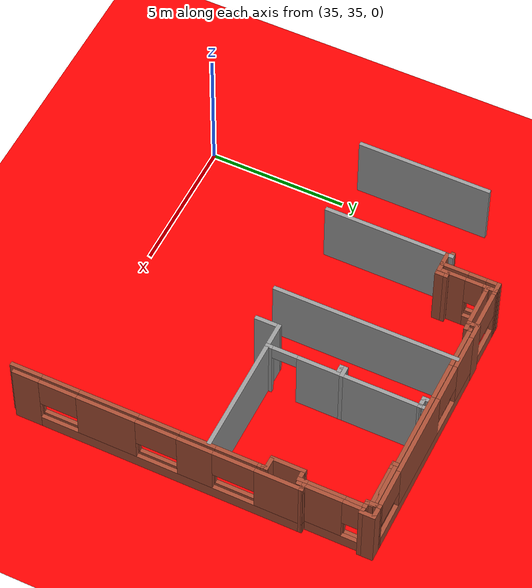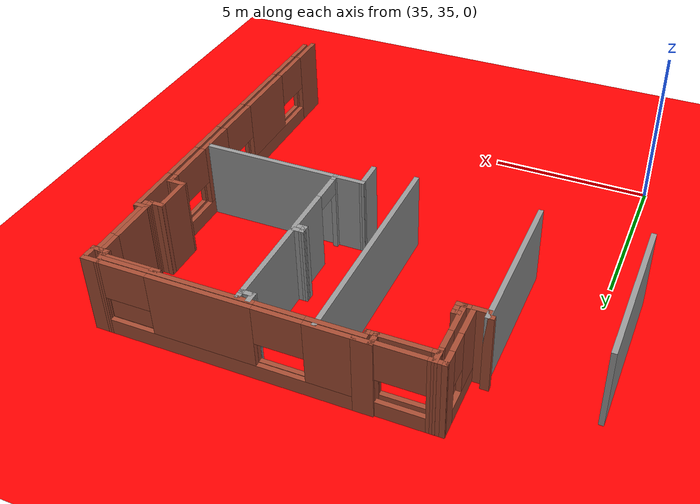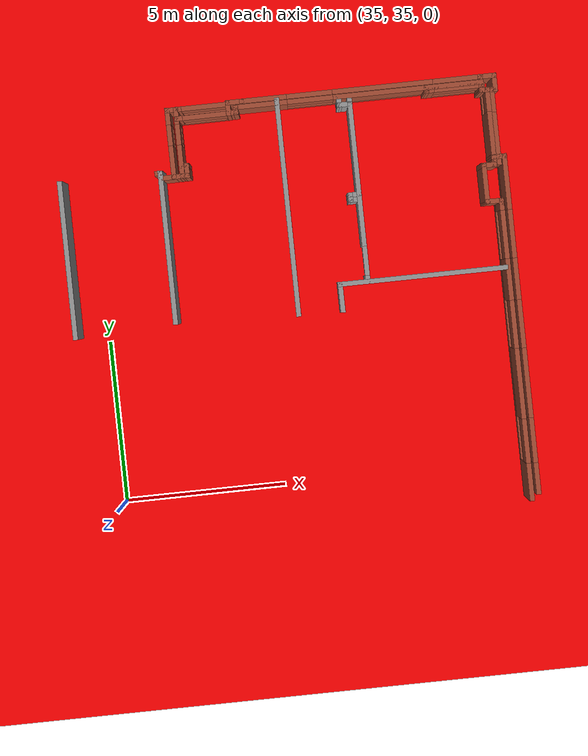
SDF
<sdf version="1.7">
 <world name="RaSpectLoc_ign">
  <model name="ground_plane">
   <static>1</static>
   <link name="link">
    <collision name="collision">
     <geometry><plane><normal>0 0 1</normal><size>100 100</size></plane></geometry>
     <surface><friction><ode><mu>100</mu><mu2>50</mu2></ode></friction></surface>
    </collision>
    <visual name="visual">
     <cast_shadows>0</cast_shadows>
     <geometry><plane><normal>0 0 1</normal><size>100 100</size></plane></geometry>
     <material><ambient>1 0 0 1</ambient><diffuse>1 0 0 1</diffuse><specular>0.1 0.1 0.1 1</specular></material>
    </visual>
   </link>
  </model>
  <model name="CVSSP">
   <pose>23.8714 24.094 0 0 -0 0</pose>
   <link name="Wall_246">
    <pose>23.6539 14.3878 0 0 -0 1.5708</pose>
    <visual name="Wall_246_Visual_0">
     <pose>-4.04048 0 1.25 0 -0 0</pose>
     <geometry><box><size>1.16905 0.15 2.5</size></box></geometry>
     <material>
      <script><uri>file://media/materials/scripts/gazebo.material</uri><name>Gazebo/Bricks</name></script>
      <ambient>1 1 1 1</ambient>
     </material>
    </visual>
    <collision name="Wall_246_Collision_0">
     <geometry><box><size>1.16905 0.15 2.5</size></box></geometry>
     <pose>-4.04048 0 1.25 0 -0 0</pose>
    </collision>
    <visual name="Wall_246_Visual_1">
     <pose>0.584524 0 0.25 0 -0 0</pose>
     <geometry><box><size>8.08095 0.15 0.5</size></box></geometry>
     <material>
      <script><uri>file://media/materials/scripts/gazebo.material</uri><name>Gazebo/Bricks</name></script>
      <ambient>1 1 1 1</ambient>
     </material>
    </visual>
    <collision name="Wall_246_Collision_1">
     <geometry><box><size>8.08095 0.15 0.5</size></box></geometry>
     <pose>0.584524 0 0.25 0 -0 0</pose>
    </collision>
    <visual name="Wall_246_Visual_2">
     <pose>-0.997265 0 1.5 0 -0 0</pose>
     <geometry><box><size>2.17318 0.15 2</size></box></geometry>
     <material>
      <script><uri>file://media/materials/scripts/gazebo.material</uri><name>Gazebo/Bricks</name></script>
      <ambient>1 1 1 1</ambient>
     </material>
    </visual>
    <collision name="Wall_246_Collision_2">
     <geometry><box><size>2.17318 0.15 2</size></box></geometry>
     <pose>-0.997265 0 1.5 0 -0 0</pose>
    </collision>
    <visual name="Wall_246_Visual_3">
     <pose>2.21429 0 1.5 0 -0 0</pose>
     <geometry><box><size>1.28036 0.15 2</size></box></geometry>
     <material>
      <script><uri>file://media/materials/scripts/gazebo.material</uri><name>Gazebo/Bricks</name></script>
      <ambient>1 1 1 1</ambient>
     </material>
    </visual>
    <collision name="Wall_246_Collision_3">
     <geometry><box><size>1.28036 0.15 2</size></box></geometry>
     <pose>2.21429 0 1.5 0 -0 0</pose>
    </collision>
    <visual name="Wall_246_Visual_4">
     <pose>4.48646 0 1.5 0 -0 0</pose>
     <geometry><box><size>0.27708 0.15 2</size></box></geometry>
     <material>
      <script><uri>file://media/materials/scripts/gazebo.material</uri><name>Gazebo/Bricks</name></script>
      <ambient>1 1 1 1</ambient>
     </material>
    </visual>
    <collision name="Wall_246_Collision_4">
     <geometry><box><size>0.27708 0.15 2</size></box></geometry>
     <pose>4.48646 0 1.5 0 -0 0</pose>
    </collision>
    <visual name="Wall_246_Visual_5">
     <pose>-2.7699 0 1.9 0 -0 0</pose>
     <geometry><box><size>1.3721 0.15 1.2</size></box></geometry>
     <material>
      <script><uri>file://media/materials/scripts/gazebo.material</uri><name>Gazebo/Bricks</name></script>
      <ambient>1 1 1 1</ambient>
     </material>
    </visual>
    <collision name="Wall_246_Collision_5">
     <geometry><box><size>1.3721 0.15 1.2</size></box></geometry>
     <pose>-2.7699 0 1.9 0 -0 0</pose>
    </collision>
    <visual name="Wall_246_Visual_6">
     <pose>0.831717 0 1.9 0 -0 0</pose>
     <geometry><box><size>1.48478 0.15 1.2</size></box></geometry>
     <material>
      <script><uri>file://media/materials/scripts/gazebo.material</uri><name>Gazebo/Bricks</name></script>
      <ambient>1 1 1 1</ambient>
     </material>
    </visual>
    <collision name="Wall_246_Collision_6">
     <geometry><box><size>1.48478 0.15 1.2</size></box></geometry>
     <pose>0.831717 0 1.9 0 -0 0</pose>
    </collision>
    <visual name="Wall_246_Visual_7">
     <pose>3.60119 0 1.9 0 -0 0</pose>
     <geometry><box><size>1.49345 0.15 1.2</size></box></geometry>
     <material>
      <script><uri>file://media/materials/scripts/gazebo.material</uri><name>Gazebo/Bricks</name></script>
      <ambient>1 1 1 1</ambient>
     </material>
    </visual>
    <collision name="Wall_246_Collision_7">
     <geometry><box><size>1.49345 0.15 1.2</size></box></geometry>
     <pose>3.60119 0 1.9 0 -0 0</pose>
    </collision>
   </link>
   <link name="Wall_248">
    <pose>23.8767 15.2054 0 0 -0 1.57026</pose>
    <visual name="Wall_248_Visual_0">
     <pose>-4.76522 0 1.25 0 -0 0</pose>
     <geometry><box><size>0.983202 0.15 2.5</size></box></geometry>
     <material>
      <script><uri>file://media/materials/scripts/gazebo.material</uri><name>Gazebo/Bricks</name></script>
      <ambient>1 1 1 1</ambient>
     </material>
    </visual>
    <collision name="Wall_248_Collision_0">
     <geometry><box><size>0.983202 0.15 2.5</size></box></geometry>
     <pose>-4.76522 0 1.25 0 -0 0</pose>
    </collision>
    <visual name="Wall_248_Visual_1">
     <pose>0.491601 0 0.25 0 -0 0</pose>
     <geometry><box><size>9.53043 0.15 0.5</size></box></geometry>
     <material>
      <script><uri>file://media/materials/scripts/gazebo.material</uri><name>Gazebo/Bricks</name></script>
      <ambient>1 1 1 1</ambient>
     </material>
    </visual>
    <collision name="Wall_248_Collision_1">
     <geometry><box><size>9.53043 0.15 0.5</size></box></geometry>
     <pose>0.491601 0 0.25 0 -0 0</pose>
    </collision>
    <visual name="Wall_248_Visual_2">
     <pose>-1.81497 0 1.5 0 -0 0</pose>
     <geometry><box><size>2.15587 0.15 2</size></box></geometry>
     <material>
      <script><uri>file://media/materials/scripts/gazebo.material</uri><name>Gazebo/Bricks</name></script>
      <ambient>1 1 1 1</ambient>
     </material>
    </visual>
    <collision name="Wall_248_Collision_2">
     <geometry><box><size>2.15587 0.15 2</size></box></geometry>
     <pose>-1.81497 0 1.5 0 -0 0</pose>
    </collision>
    <visual name="Wall_248_Visual_3">
     <pose>1.3966 0 1.5 0 -0 0</pose>
     <geometry><box><size>1.28045 0.15 2</size></box></geometry>
     <material>
      <script><uri>file://media/materials/scripts/gazebo.material</uri><name>Gazebo/Bricks</name></script>
      <ambient>1 1 1 1</ambient>
     </material>
    </visual>
    <collision name="Wall_248_Collision_3">
     <geometry><box><size>1.28045 0.15 2</size></box></geometry>
     <pose>1.3966 0 1.5 0 -0 0</pose>
    </collision>
    <visual name="Wall_248_Visual_4">
     <pose>4.39355 0 1.5 0 -0 0</pose>
     <geometry><box><size>1.72654 0.15 2</size></box></geometry>
     <material>
      <script><uri>file://media/materials/scripts/gazebo.material</uri><name>Gazebo/Bricks</name></script>
      <ambient>1 1 1 1</ambient>
     </material>
    </visual>
    <collision name="Wall_248_Collision_4">
     <geometry><box><size>1.72654 0.15 2</size></box></geometry>
     <pose>4.39355 0 1.5 0 -0 0</pose>
    </collision>
    <visual name="Wall_248_Visual_5">
     <pose>-3.58326 0 1.9 0 -0 0</pose>
     <geometry><box><size>1.38071 0.15 1.2</size></box></geometry>
     <material>
      <script><uri>file://media/materials/scripts/gazebo.material</uri><name>Gazebo/Bricks</name></script>
      <ambient>1 1 1 1</ambient>
     </material>
    </visual>
    <collision name="Wall_248_Collision_5">
     <geometry><box><size>1.38071 0.15 1.2</size></box></geometry>
     <pose>-3.58326 0 1.9 0 -0 0</pose>
    </collision>
    <visual name="Wall_248_Visual_6">
     <pose>0.009668 0 1.9 0 -0 0</pose>
     <geometry><box><size>1.49341 0.15 1.2</size></box></geometry>
     <material>
      <script><uri>file://media/materials/scripts/gazebo.material</uri><name>Gazebo/Bricks</name></script>
      <ambient>1 1 1 1</ambient>
     </material>
    </visual>
    <collision name="Wall_248_Collision_6">
     <geometry><box><size>1.49341 0.15 1.2</size></box></geometry>
     <pose>0.009668 0 1.9 0 -0 0</pose>
    </collision>
    <visual name="Wall_248_Visual_7">
     <pose>2.78355 0 1.9 0 -0 0</pose>
     <geometry><box><size>1.49345 0.15 1.2</size></box></geometry>
     <material>
      <script><uri>file://media/materials/scripts/gazebo.material</uri><name>Gazebo/Bricks</name></script>
      <ambient>1 1 1 1</ambient>
     </material>
    </visual>
    <collision name="Wall_248_Collision_7">
     <geometry><box><size>1.49345 0.15 1.2</size></box></geometry>
     <pose>2.78355 0 1.9 0 -0 0</pose>
    </collision>
   </link>
   <link name="Wall_249">
    <collision name="Wall_249_Collision">
     <geometry><box><size>0.472183 0.15 2.5</size></box></geometry>
     <pose>0 0 1.25 0 -0 0</pose>
    </collision>
    <visual name="Wall_249_Visual">
     <pose>0 0 1.25 0 -0 0</pose>
     <geometry><box><size>0.472183 0.15 2.5</size></box></geometry>
     <material>
      <script><uri>file://media/materials/scripts/gazebo.material</uri><name>Gazebo/Bricks</name></script>
      <ambient>1 1 1 1</ambient>
     </material>
    </visual>
    <pose>23.7184 20.3872 0 0 -0 3.14159</pose>
   </link>
   <link name="Wall_251">
    <collision name="Wall_251_Collision">
     <geometry><box><size>0.25 0.15 2.5</size></box></geometry>
     <pose>0 0 1.25 0 -0 0</pose>
    </collision>
    <visual name="Wall_251_Visual">
     <pose>0 0 1.25 0 -0 0</pose>
     <geometry><box><size>0.25 0.15 2.5</size></box></geometry>
     <material>
      <script><uri>file://media/materials/scripts/gazebo.material</uri><name>Gazebo/Bricks</name></script>
      <ambient>1 1 1 1</ambient>
     </material>
    </visual>
    <pose>23.6539 18.9878 0 0 -0 1.5708</pose>
   </link>
   <link name="Wall_252">
    <collision name="Wall_252_Collision">
     <geometry><box><size>0.578729 0.15 2.5</size></box></geometry>
     <pose>0 0 1.25 0 -0 0</pose>
    </collision>
    <visual name="Wall_252_Visual">
     <pose>0 0 1.25 0 -0 0</pose>
     <geometry><box><size>0.578729 0.15 2.5</size></box></geometry>
     <material>
      <script><uri>file://media/materials/scripts/gazebo.material</uri><name>Gazebo/Bricks</name></script>
      <ambient>1 1 1 1</ambient>
     </material>
    </visual>
    <pose>23.4395 19.0409 0 0 -0 3.12698</pose>
   </link>
   <link name="Wall_253">
    <collision name="Wall_253_Collision">
     <geometry><box><size>1.26972 0.15 2.5</size></box></geometry>
     <pose>0 0 1.25 0 -0 0</pose>
    </collision>
    <visual name="Wall_253_Visual">
     <pose>0 0 1.25 0 -0 0</pose>
     <geometry><box><size>1.26972 0.15 2.5</size></box></geometry>
     <material>
      <script><uri>file://media/materials/scripts/gazebo.material</uri><name>Gazebo/Bricks</name></script>
      <ambient>1 1 1 1</ambient>
     </material>
    </visual>
    <pose>23.2252 19.6039 0 0 -0 1.5708</pose>
   </link>
   <link name="Wall_254">
    <collision name="Wall_254_Collision">
     <geometry><box><size>0.488706 0.15 2.5</size></box></geometry>
     <pose>0 0 1.25 0 -0 0</pose>
    </collision>
    <visual name="Wall_254_Visual">
     <pose>0 0 1.25 0 -0 0</pose>
     <geometry><box><size>0.488706 0.15 2.5</size></box></geometry>
     <material>
      <script><uri>file://media/materials/scripts/gazebo.material</uri><name>Gazebo/Bricks</name></script>
      <ambient>1 1 1 1</ambient>
     </material>
    </visual>
    <pose>23.3945 20.1571 0 0 0 -0.000206</pose>
   </link>
   <link name="Wall_256">
    <collision name="Wall_256_Collision">
     <geometry><box><size>0.373652 0.15 2.5</size></box></geometry>
     <pose>0 0 1.25 0 -0 0</pose>
    </collision>
    <visual name="Wall_256_Visual">
     <pose>0 0 1.25 0 -0 0</pose>
     <geometry><box><size>0.373652 0.15 2.5</size></box></geometry>
     <material>
      <script><uri>file://media/materials/scripts/gazebo.material</uri><name>Gazebo/Bricks</name></script>
      <ambient>1 1 1 1</ambient>
     </material>
    </visual>
    <pose>23.5606 20.2755 0 0 -0 1.6002</pose>
   </link>
   <link name="Wall_260">
    <pose>23.5639 21.3143 0 0 -0 1.5708</pose>
    <visual name="Wall_260_Visual_0">
     <pose>-0.373491 0 1.25 0 -0 0</pose>
     <geometry><box><size>1.70433 0.15 2.5</size></box></geometry>
     <material>
      <script><uri>file://media/materials/scripts/gazebo.material</uri><name>Gazebo/Bricks</name></script>
      <ambient>1 1 1 1</ambient>
     </material>
    </visual>
    <collision name="Wall_260_Collision_0">
     <geometry><box><size>1.70433 0.15 2.5</size></box></geometry>
     <pose>-0.373491 0 1.25 0 -0 0</pose>
    </collision>
    <visual name="Wall_260_Visual_1">
     <pose>0.852167 0 0.25 0 -0 0</pose>
     <geometry><box><size>0.746982 0.15 0.5</size></box></geometry>
     <material>
      <script><uri>file://media/materials/scripts/gazebo.material</uri><name>Gazebo/Bricks</name></script>
      <ambient>1 1 1 1</ambient>
     </material>
    </visual>
    <collision name="Wall_260_Collision_1">
     <geometry><box><size>0.746982 0.15 0.5</size></box></geometry>
     <pose>0.852167 0 0.25 0 -0 0</pose>
    </collision>
    <visual name="Wall_260_Visual_2">
     <pose>1.14815 0 1.5 0 -0 0</pose>
     <geometry><box><size>0.155018 0.15 2</size></box></geometry>
     <material>
      <script><uri>file://media/materials/scripts/gazebo.material</uri><name>Gazebo/Bricks</name></script>
      <ambient>1 1 1 1</ambient>
     </material>
    </visual>
    <collision name="Wall_260_Collision_2">
     <geometry><box><size>0.155018 0.15 2</size></box></geometry>
     <pose>1.14815 0 1.5 0 -0 0</pose>
    </collision>
    <visual name="Wall_260_Visual_3">
     <pose>0.774658 0 1.9 0 -0 0</pose>
     <geometry><box><size>0.591964 0.15 1.2</size></box></geometry>
     <material>
      <script><uri>file://media/materials/scripts/gazebo.material</uri><name>Gazebo/Bricks</name></script>
      <ambient>1 1 1 1</ambient>
     </material>
    </visual>
    <collision name="Wall_260_Collision_3">
     <geometry><box><size>0.591964 0.15 1.2</size></box></geometry>
     <pose>0.774658 0 1.9 0 -0 0</pose>
    </collision>
   </link>
   <link name="Wall_261">
    <collision name="Wall_261_Collision">
     <geometry><box><size>0.320954 0.15 2.5</size></box></geometry>
     <pose>0 0 1.25 0 -0 0</pose>
    </collision>
    <visual name="Wall_261_Visual">
     <pose>0 0 1.25 0 -0 0</pose>
     <geometry><box><size>0.320954 0.15 2.5</size></box></geometry>
     <material>
      <script><uri>file://media/materials/scripts/gazebo.material</uri><name>Gazebo/Bricks</name></script>
      <ambient>1 1 1 1</ambient>
     </material>
    </visual>
    <pose>23.4784 22.465 0 0 -0 3.14159</pose>
   </link>
   <link name="Wall_262">
    <collision name="Wall_262_Collision">
     <geometry><box><size>0.564287 0.15 2.5</size></box></geometry>
     <pose>0 0 1.25 0 -0 0</pose>
    </collision>
    <visual name="Wall_262_Visual">
     <pose>0 0 1.25 0 -0 0</pose>
     <geometry><box><size>0.564287 0.15 2.5</size></box></geometry>
     <material>
      <script><uri>file://media/materials/scripts/gazebo.material</uri><name>Gazebo/Bricks</name></script>
      <ambient>1 1 1 1</ambient>
     </material>
    </visual>
    <pose>23.3897 22.6721 0 0 -0 1.58667</pose>
   </link>
   <link name="Wall_263">
    <collision name="Wall_263_Collision">
     <geometry><box><size>0.577386 0.15 2.5</size></box></geometry>
     <pose>0 0 1.25 0 -0 0</pose>
    </collision>
    <visual name="Wall_263_Visual">
     <pose>0 0 1.25 0 -0 0</pose>
     <geometry><box><size>0.577386 0.15 2.5</size></box></geometry>
     <material>
      <script><uri>file://media/materials/scripts/gazebo.material</uri><name>Gazebo/Bricks</name></script>
      <ambient>1 1 1 1</ambient>
     </material>
    </visual>
    <pose>23.6001 22.8792 0 0 -0 0</pose>
   </link>
   <link name="Wall_264">
    <collision name="Wall_264_Collision">
     <geometry><box><size>0.577386 0.15 2.5</size></box></geometry>
     <pose>0 0 1.25 0 -0 0</pose>
    </collision>
    <visual name="Wall_264_Visual">
     <pose>0 0 1.25 0 -0 0</pose>
     <geometry><box><size>0.577386 0.15 2.5</size></box></geometry>
     <material>
      <script><uri>file://media/materials/scripts/gazebo.material</uri><name>Gazebo/Bricks</name></script>
      <ambient>1 1 1 1</ambient>
     </material>
    </visual>
    <pose>23.8138 22.6655 0 0 0 -1.5708</pose>
   </link>
   <link name="Wall_265">
    <collision name="Wall_265_Collision">
     <geometry><box><size>0.262549 0.15 2.5</size></box></geometry>
     <pose>0 0 1.25 0 -0 0</pose>
    </collision>
    <visual name="Wall_265_Visual">
     <pose>0 0 1.25 0 -0 0</pose>
     <geometry><box><size>0.262549 0.15 2.5</size></box></geometry>
     <material>
      <script><uri>file://media/materials/scripts/gazebo.material</uri><name>Gazebo/Bricks</name></script>
      <ambient>1 1 1 1</ambient>
     </material>
    </visual>
    <pose>23.7579 22.4518 0 0 -0 3.14159</pose>
   </link>
   <link name="Wall_266">
    <pose>23.702 21.3275 0 0 0 -1.5708</pose>
    <visual name="Wall_266_Visual_0">
     <pose>-1.13276 0 1.25 0 -0 0</pose>
     <geometry><box><size>0.133194 0.15 2.5</size></box></geometry>
     <material>
      <script><uri>file://media/materials/scripts/gazebo.material</uri><name>Gazebo/Bricks</name></script>
      <ambient>1 1 1 1</ambient>
     </material>
    </visual>
    <collision name="Wall_266_Collision_0">
     <geometry><box><size>0.133194 0.15 2.5</size></box></geometry>
     <pose>-1.13276 0 1.25 0 -0 0</pose>
    </collision>
    <visual name="Wall_266_Visual_1">
     <pose>0.066597 0 0.25 0 -0 0</pose>
     <geometry><box><size>2.26551 0.15 0.5</size></box></geometry>
     <material>
      <script><uri>file://media/materials/scripts/gazebo.material</uri><name>Gazebo/Bricks</name></script>
      <ambient>1 1 1 1</ambient>
     </material>
    </visual>
    <collision name="Wall_266_Collision_1">
     <geometry><box><size>2.26551 0.15 0.5</size></box></geometry>
     <pose>0.066597 0 0.25 0 -0 0</pose>
    </collision>
    <visual name="Wall_266_Visual_2">
     <pose>0.384249 0 1.5 0 -0 0</pose>
     <geometry><box><size>1.63021 0.15 2</size></box></geometry>
     <material>
      <script><uri>file://media/materials/scripts/gazebo.material</uri><name>Gazebo/Bricks</name></script>
      <ambient>1 1 1 1</ambient>
     </material>
    </visual>
    <collision name="Wall_266_Collision_2">
     <geometry><box><size>1.63021 0.15 2</size></box></geometry>
     <pose>0.384249 0 1.5 0 -0 0</pose>
    </collision>
    <visual name="Wall_266_Visual_3">
     <pose>-0.748507 0 1.9 0 -0 0</pose>
     <geometry><box><size>0.635305 0.15 1.2</size></box></geometry>
     <material>
      <script><uri>file://media/materials/scripts/gazebo.material</uri><name>Gazebo/Bricks</name></script>
      <ambient>1 1 1 1</ambient>
     </material>
    </visual>
    <collision name="Wall_266_Collision_3">
     <geometry><box><size>0.635305 0.15 1.2</size></box></geometry>
     <pose>-0.748507 0 1.9 0 -0 0</pose>
    </collision>
   </link>
   <link name="Wall_268">
    <pose>19.7114 22.8792 0 0 -0 3.14159</pose>
    <visual name="Wall_268_Visual_0">
     <pose>-3.69493 0 1.25 0 -0 0</pose>
     <geometry><box><size>0.110141 0.15 2.5</size></box></geometry>
     <material>
      <script><uri>file://media/materials/scripts/gazebo.material</uri><name>Gazebo/Bricks</name></script>
      <ambient>1 1 1 1</ambient>
     </material>
    </visual>
    <collision name="Wall_268_Collision_0">
     <geometry><box><size>0.110141 0.15 2.5</size></box></geometry>
     <pose>-3.69493 0 1.25 0 -0 0</pose>
    </collision>
    <visual name="Wall_268_Visual_1">
     <pose>0.05507 0 0.25 0 -0 0</pose>
     <geometry><box><size>7.38986 0.15 0.5</size></box></geometry>
     <material>
      <script><uri>file://media/materials/scripts/gazebo.material</uri><name>Gazebo/Bricks</name></script>
      <ambient>1 1 1 1</ambient>
     </material>
    </visual>
    <collision name="Wall_268_Collision_1">
     <geometry><box><size>7.38986 0.15 0.5</size></box></geometry>
     <pose>0.05507 0 0.25 0 -0 0</pose>
    </collision>
    <visual name="Wall_268_Visual_2">
     <pose>-0.658919 0 1.5 0 -0 0</pose>
     <geometry><box><size>3.09633 0.15 2</size></box></geometry>
     <material>
      <script><uri>file://media/materials/scripts/gazebo.material</uri><name>Gazebo/Bricks</name></script>
      <ambient>1 1 1 1</ambient>
     </material>
    </visual>
    <collision name="Wall_268_Collision_2">
     <geometry><box><size>3.09633 0.15 2</size></box></geometry>
     <pose>-0.658919 0 1.5 0 -0 0</pose>
    </collision>
    <visual name="Wall_268_Visual_3">
     <pose>3.02537 0 1.5 0 -0 0</pose>
     <geometry><box><size>1.44926 0.15 2</size></box></geometry>
     <material>
      <script><uri>file://media/materials/scripts/gazebo.material</uri><name>Gazebo/Bricks</name></script>
      <ambient>1 1 1 1</ambient>
     </material>
    </visual>
    <collision name="Wall_268_Collision_3">
     <geometry><box><size>1.44926 0.15 2</size></box></geometry>
     <pose>3.02537 0 1.5 0 -0 0</pose>
    </collision>
    <visual name="Wall_268_Visual_4">
     <pose>-2.92347 0 1.9 0 -0 0</pose>
     <geometry><box><size>1.43278 0.15 1.2</size></box></geometry>
     <material>
      <script><uri>file://media/materials/scripts/gazebo.material</uri><name>Gazebo/Bricks</name></script>
      <ambient>1 1 1 1</ambient>
     </material>
    </visual>
    <collision name="Wall_268_Collision_4">
     <geometry><box><size>1.43278 0.15 1.2</size></box></geometry>
     <pose>-2.92347 0 1.9 0 -0 0</pose>
    </collision>
    <visual name="Wall_268_Visual_5">
     <pose>1.59499 0 1.9 0 -0 0</pose>
     <geometry><box><size>1.41149 0.15 1.2</size></box></geometry>
     <material>
      <script><uri>file://media/materials/scripts/gazebo.material</uri><name>Gazebo/Bricks</name></script>
      <ambient>1 1 1 1</ambient>
     </material>
    </visual>
    <collision name="Wall_268_Collision_5">
     <geometry><box><size>1.41149 0.15 1.2</size></box></geometry>
     <pose>1.59499 0 1.9 0 -0 0</pose>
    </collision>
   </link>
   <link name="Wall_269">
    <collision name="Wall_269_Collision">
     <geometry><box><size>0.587162 0.15 2.5</size></box></geometry>
     <pose>0 0 1.25 0 -0 0</pose>
    </collision>
    <visual name="Wall_269_Visual">
     <pose>0 0 1.25 0 -0 0</pose>
     <geometry><box><size>0.587162 0.15 2.5</size></box></geometry>
     <material>
      <script><uri>file://media/materials/scripts/gazebo.material</uri><name>Gazebo/Bricks</name></script>
      <ambient>1 1 1 1</ambient>
     </material>
    </visual>
    <pose>15.8178 22.8792 0 0 0 -3.14142</pose>
   </link>
   <link name="Wall_270">
    <collision name="Wall_270_Collision">
     <geometry><box><size>0.465577 0.15 2.5</size></box></geometry>
     <pose>0 0 1.25 0 -0 0</pose>
    </collision>
    <visual name="Wall_270_Visual">
     <pose>0 0 1.25 0 -0 0</pose>
     <geometry><box><size>0.465577 0.15 2.5</size></box></geometry>
     <material>
      <script><uri>file://media/materials/scripts/gazebo.material</uri><name>Gazebo/Bricks</name></script>
      <ambient>1 1 1 1</ambient>
     </material>
    </visual>
    <pose>15.5965 22.7138 0 0 0 -1.58788</pose>
   </link>
   <link name="Wall_271">
    <collision name="Wall_271_Collision">
     <geometry><box><size>0.381117 0.15 2.5</size></box></geometry>
     <pose>0 0 1.25 0 -0 0</pose>
    </collision>
    <visual name="Wall_271_Visual">
     <pose>0 0 1.25 0 -0 0</pose>
     <geometry><box><size>0.381117 0.15 2.5</size></box></geometry>
     <material>
      <script><uri>file://media/materials/scripts/gazebo.material</uri><name>Gazebo/Bricks</name></script>
      <ambient>1 1 1 1</ambient>
     </material>
    </visual>
    <pose>15.7094 22.5636 0 0 -0 0</pose>
   </link>
   <link name="Wall_272">
    <collision name="Wall_272_Collision">
     <geometry><box><size>0.294654 0.15 2.5</size></box></geometry>
     <pose>0 0 1.25 0 -0 0</pose>
    </collision>
    <visual name="Wall_272_Visual">
     <pose>0 0 1.25 0 -0 0</pose>
     <geometry><box><size>0.294654 0.15 2.5</size></box></geometry>
     <material>
      <script><uri>file://media/materials/scripts/gazebo.material</uri><name>Gazebo/Bricks</name></script>
      <ambient>1 1 1 1</ambient>
     </material>
    </visual>
    <pose>15.8249 22.6359 0 0 -0 1.5708</pose>
   </link>
   <link name="Wall_273">
    <pose>19.6122 22.7148 0 0 -0 0</pose>
    <visual name="Wall_273_Visual_0">
     <pose>-3.02728 0 1.25 0 -0 0</pose>
     <geometry><box><size>1.67003 0.15 2.5</size></box></geometry>
     <material>
      <script><uri>file://media/materials/scripts/gazebo.material</uri><name>Gazebo/Bricks</name></script>
      <ambient>1 1 1 1</ambient>
     </material>
    </visual>
    <collision name="Wall_273_Collision_0">
     <geometry><box><size>1.67003 0.15 2.5</size></box></geometry>
     <pose>-3.02728 0 1.25 0 -0 0</pose>
    </collision>
    <visual name="Wall_273_Visual_1">
     <pose>0.835017 0 0.25 0 -0 0</pose>
     <geometry><box><size>6.05455 0.15 0.5</size></box></geometry>
     <material>
      <script><uri>file://media/materials/scripts/gazebo.material</uri><name>Gazebo/Bricks</name></script>
      <ambient>1 1 1 1</ambient>
     </material>
    </visual>
    <collision name="Wall_273_Collision_1">
     <geometry><box><size>6.05455 0.15 0.5</size></box></geometry>
     <pose>0.835017 0 0.25 0 -0 0</pose>
    </collision>
    <visual name="Wall_273_Visual_2">
     <pose>1.54076 0 1.5 0 -0 0</pose>
     <geometry><box><size>4.64306 0.15 2</size></box></geometry>
     <material>
      <script><uri>file://media/materials/scripts/gazebo.material</uri><name>Gazebo/Bricks</name></script>
      <ambient>1 1 1 1</ambient>
     </material>
    </visual>
    <collision name="Wall_273_Collision_2">
     <geometry><box><size>4.64306 0.15 2</size></box></geometry>
     <pose>1.54076 0 1.5 0 -0 0</pose>
    </collision>
    <visual name="Wall_273_Visual_3">
     <pose>-1.48652 0 1.9 0 -0 0</pose>
     <geometry><box><size>1.41149 0.15 1.2</size></box></geometry>
     <material>
      <script><uri>file://media/materials/scripts/gazebo.material</uri><name>Gazebo/Bricks</name></script>
      <ambient>1 1 1 1</ambient>
     </material>
    </visual>
    <collision name="Wall_273_Collision_3">
     <geometry><box><size>1.41149 0.15 1.2</size></box></geometry>
     <pose>-1.48652 0 1.9 0 -0 0</pose>
    </collision>
   </link>
   <link name="Wall_275">
    <collision name="Wall_275_Collision">
     <geometry><box><size>0.25 0.15 2.5</size></box></geometry>
     <pose>0 0 1.25 0 -0 0</pose>
    </collision>
    <visual name="Wall_275_Visual">
     <pose>0 0 1.25 0 -0 0</pose>
     <geometry><box><size>0.25 0.15 2.5</size></box></geometry>
     <material>
      <script><uri>file://media/materials/scripts/gazebo.material</uri><name>Gazebo/Bricks</name></script>
      <ambient>1 1 1 1</ambient>
     </material>
    </visual>
    <pose>21.7097 22.6648 0 0 0 -1.5708</pose>
   </link>
   <link name="Wall_276">
    <pose>22.5711 22.6155 0 0 -0 0.000797</pose>
    <visual name="Wall_276_Visual_0">
     <pose>-0.783646 0 1.25 0 -0 0</pose>
     <geometry><box><size>0.3054 0.15 2.5</size></box></geometry>
     <material>
      <script><uri>file://media/materials/scripts/gazebo.material</uri><name>Gazebo/Bricks</name></script>
      <ambient>1 1 1 1</ambient>
     </material>
    </visual>
    <collision name="Wall_276_Collision_0">
     <geometry><box><size>0.3054 0.15 2.5</size></box></geometry>
     <pose>-0.783646 0 1.25 0 -0 0</pose>
    </collision>
    <visual name="Wall_276_Visual_1">
     <pose>0.1527 0 0.25 0 -0 0</pose>
     <geometry><box><size>1.56729 0.15 0.5</size></box></geometry>
     <material>
      <script><uri>file://media/materials/scripts/gazebo.material</uri><name>Gazebo/Bricks</name></script>
      <ambient>1 1 1 1</ambient>
     </material>
    </visual>
    <collision name="Wall_276_Collision_1">
     <geometry><box><size>1.56729 0.15 0.5</size></box></geometry>
     <pose>0.1527 0 0.25 0 -0 0</pose>
    </collision>
    <visual name="Wall_276_Visual_2">
     <pose>0.860427 0 1.5 0 -0 0</pose>
     <geometry><box><size>0.15184 0.15 2</size></box></geometry>
     <material>
      <script><uri>file://media/materials/scripts/gazebo.material</uri><name>Gazebo/Bricks</name></script>
      <ambient>1 1 1 1</ambient>
     </material>
    </visual>
    <collision name="Wall_276_Collision_2">
     <geometry><box><size>0.15184 0.15 2</size></box></geometry>
     <pose>0.860427 0 1.5 0 -0 0</pose>
    </collision>
    <visual name="Wall_276_Visual_3">
     <pose>0.07678 0 1.9 0 -0 0</pose>
     <geometry><box><size>1.41545 0.15 1.2</size></box></geometry>
     <material>
      <script><uri>file://media/materials/scripts/gazebo.material</uri><name>Gazebo/Bricks</name></script>
      <ambient>1 1 1 1</ambient>
     </material>
    </visual>
    <collision name="Wall_276_Collision_3">
     <geometry><box><size>1.41545 0.15 1.2</size></box></geometry>
     <pose>0.07678 0 1.9 0 -0 0</pose>
    </collision>
   </link>
   <link name="Wall_286">
    <pose>14.7864 22.5502 0 0 0 -3.13685</pose>
    <visual name="Wall_286_Visual_0">
     <pose>-0.813568 0 1.25 0 -0 0</pose>
     <geometry><box><size>0.118345 0.15 2.5</size></box></geometry>
     <material>
      <script><uri>file://media/materials/scripts/gazebo.material</uri><name>Gazebo/Bricks</name></script>
      <ambient>1 1 1 1</ambient>
     </material>
    </visual>
    <collision name="Wall_286_Collision_0">
     <geometry><box><size>0.118345 0.15 2.5</size></box></geometry>
     <pose>-0.813568 0 1.25 0 -0 0</pose>
    </collision>
    <visual name="Wall_286_Visual_1">
     <pose>0.059173 0 0.25 0 -0 0</pose>
     <geometry><box><size>1.62714 0.15 0.5</size></box></geometry>
     <material>
      <script><uri>file://media/materials/scripts/gazebo.material</uri><name>Gazebo/Bricks</name></script>
      <ambient>1 1 1 1</ambient>
     </material>
    </visual>
    <collision name="Wall_286_Collision_1">
     <geometry><box><size>1.62714 0.15 0.5</size></box></geometry>
     <pose>0.059173 0 0.25 0 -0 0</pose>
    </collision>
    <visual name="Wall_286_Visual_2">
     <pose>0.74556 0 1.5 0 -0 0</pose>
     <geometry><box><size>0.254362 0.15 2</size></box></geometry>
     <material>
      <script><uri>file://media/materials/scripts/gazebo.material</uri><name>Gazebo/Bricks</name></script>
      <ambient>1 1 1 1</ambient>
     </material>
    </visual>
    <collision name="Wall_286_Collision_2">
     <geometry><box><size>0.254362 0.15 2</size></box></geometry>
     <pose>0.74556 0 1.5 0 -0 0</pose>
    </collision>
    <visual name="Wall_286_Visual_3">
     <pose>-0.068008 0 1.9 0 -0 0</pose>
     <geometry><box><size>1.37277 0.15 1.2</size></box></geometry>
     <material>
      <script><uri>file://media/materials/scripts/gazebo.material</uri><name>Gazebo/Bricks</name></script>
      <ambient>1 1 1 1</ambient>
     </material>
    </visual>
    <collision name="Wall_286_Collision_3">
     <geometry><box><size>1.37277 0.15 1.2</size></box></geometry>
     <pose>-0.068008 0 1.9 0 -0 0</pose>
    </collision>
   </link>
   <link name="Wall_287">
    <collision name="Wall_287_Collision">
     <geometry><box><size>0.437335 0.15 2.5</size></box></geometry>
     <pose>0 0 1.25 0 -0 0</pose>
    </collision>
    <visual name="Wall_287_Visual">
     <pose>0 0 1.25 0 -0 0</pose>
     <geometry><box><size>0.437335 0.15 2.5</size></box></geometry>
     <material>
      <script><uri>file://media/materials/scripts/gazebo.material</uri><name>Gazebo/Bricks</name></script>
      <ambient>1 1 1 1</ambient>
     </material>
    </visual>
    <pose>13.9886 22.6901 0 0 -0 1.5708</pose>
   </link>
   <link name="Wall_288">
    <pose>14.7864 22.8338 0 0 -0 0</pose>
    <visual name="Wall_288_Visual_0">
     <pose>-0.749362 0 1.25 0 -0 0</pose>
     <geometry><box><size>0.246758 0.15 2.5</size></box></geometry>
     <material>
      <script><uri>file://media/materials/scripts/gazebo.material</uri><name>Gazebo/Bricks</name></script>
      <ambient>1 1 1 1</ambient>
     </material>
    </visual>
    <collision name="Wall_288_Collision_0">
     <geometry><box><size>0.246758 0.15 2.5</size></box></geometry>
     <pose>-0.749362 0 1.25 0 -0 0</pose>
    </collision>
    <visual name="Wall_288_Visual_1">
     <pose>0.123379 0 0.25 0 -0 0</pose>
     <geometry><box><size>1.49872 0.15 0.5</size></box></geometry>
     <material>
      <script><uri>file://media/materials/scripts/gazebo.material</uri><name>Gazebo/Bricks</name></script>
      <ambient>1 1 1 1</ambient>
     </material>
    </visual>
    <collision name="Wall_288_Collision_1">
     <geometry><box><size>1.49872 0.15 0.5</size></box></geometry>
     <pose>0.123379 0 0.25 0 -0 0</pose>
    </collision>
    <visual name="Wall_288_Visual_2">
     <pose>0.806008 0 1.5 0 -0 0</pose>
     <geometry><box><size>0.133465 0.15 2</size></box></geometry>
     <material>
      <script><uri>file://media/materials/scripts/gazebo.material</uri><name>Gazebo/Bricks</name></script>
      <ambient>1 1 1 1</ambient>
     </material>
    </visual>
    <collision name="Wall_288_Collision_2">
     <geometry><box><size>0.133465 0.15 2</size></box></geometry>
     <pose>0.806008 0 1.5 0 -0 0</pose>
    </collision>
    <visual name="Wall_288_Visual_3">
     <pose>0.056646 0 1.9 0 -0 0</pose>
     <geometry><box><size>1.36526 0.15 1.2</size></box></geometry>
     <material>
      <script><uri>file://media/materials/scripts/gazebo.material</uri><name>Gazebo/Bricks</name></script>
      <ambient>1 1 1 1</ambient>
     </material>
    </visual>
    <collision name="Wall_288_Collision_3">
     <geometry><box><size>1.36526 0.15 1.2</size></box></geometry>
     <pose>0.056646 0 1.9 0 -0 0</pose>
    </collision>
   </link>
   <link name="Wall_291">
    <collision name="Wall_291_Collision">
     <geometry><box><size>0.414758 0.15 2.5</size></box></geometry>
     <pose>0 0 1.25 0 -0 0</pose>
    </collision>
    <visual name="Wall_291_Visual">
     <pose>0 0 1.25 0 -0 0</pose>
     <geometry><box><size>0.414758 0.15 2.5</size></box></geometry>
     <material>
      <script><uri>file://media/materials/scripts/gazebo.material</uri><name>Gazebo/Bricks</name></script>
      <ambient>1 1 1 1</ambient>
     </material>
    </visual>
    <pose>13.8563 22.83 0 0 0 -3.11303</pose>
   </link>
   <link name="Wall_292">
    <pose>13.7278 21.814 0 0 0 -1.56709</pose>
    <visual name="Wall_292_Visual_0">
     <pose>-0.83496 0 1.25 0 -0 0</pose>
     <geometry><box><size>0.519602 0.15 2.5</size></box></geometry>
     <material>
      <script><uri>file://media/materials/scripts/gazebo.material</uri><name>Gazebo/Bricks</name></script>
      <ambient>1 1 1 1</ambient>
     </material>
    </visual>
    <collision name="Wall_292_Collision_0">
     <geometry><box><size>0.519602 0.15 2.5</size></box></geometry>
     <pose>-0.83496 0 1.25 0 -0 0</pose>
    </collision>
    <visual name="Wall_292_Visual_1">
     <pose>0.259801 0 0.25 0 -0 0</pose>
     <geometry><box><size>1.66992 0.15 0.5</size></box></geometry>
     <material>
      <script><uri>file://media/materials/scripts/gazebo.material</uri><name>Gazebo/Bricks</name></script>
      <ambient>1 1 1 1</ambient>
     </material>
    </visual>
    <collision name="Wall_292_Collision_1">
     <geometry><box><size>1.66992 0.15 0.5</size></box></geometry>
     <pose>0.259801 0 0.25 0 -0 0</pose>
    </collision>
    <visual name="Wall_292_Visual_2">
     <pose>0.580428 0 1.5 0 -0 0</pose>
     <geometry><box><size>1.02867 0.15 2</size></box></geometry>
     <material>
      <script><uri>file://media/materials/scripts/gazebo.material</uri><name>Gazebo/Bricks</name></script>
      <ambient>1 1 1 1</ambient>
     </material>
    </visual>
    <collision name="Wall_292_Collision_2">
     <geometry><box><size>1.02867 0.15 2</size></box></geometry>
     <pose>0.580428 0 1.5 0 -0 0</pose>
    </collision>
    <visual name="Wall_292_Visual_3">
     <pose>-0.254532 0 1.9 0 -0 0</pose>
     <geometry><box><size>0.641254 0.15 1.2</size></box></geometry>
     <material>
      <script><uri>file://media/materials/scripts/gazebo.material</uri><name>Gazebo/Bricks</name></script>
      <ambient>1 1 1 1</ambient>
     </material>
    </visual>
    <collision name="Wall_292_Collision_3">
     <geometry><box><size>0.641254 0.15 1.2</size></box></geometry>
     <pose>-0.254532 0 1.9 0 -0 0</pose>
    </collision>
   </link>
   <link name="Wall_293">
    <collision name="Wall_293_Collision">
     <geometry><box><size>0.407097 0.15 2.5</size></box></geometry>
     <pose>0 0 1.25 0 -0 0</pose>
    </collision>
    <visual name="Wall_293_Visual">
     <pose>0 0 1.25 0 -0 0</pose>
     <geometry><box><size>0.407097 0.15 2.5</size></box></geometry>
     <material>
      <script><uri>file://media/materials/scripts/gazebo.material</uri><name>Gazebo/Bricks</name></script>
      <ambient>1 1 1 1</ambient>
     </material>
    </visual>
    <pose>13.8601 20.7857 0 0 0 -0.008088</pose>
   </link>
   <link name="Wall_294">
    <pose>13.9886 21.6277 0 0 -0 1.5708</pose>
    <visual name="Wall_294_Visual_0">
     <pose>-0.401803 0 1.25 0 -0 0</pose>
     <geometry><box><size>1.03275 0.15 2.5</size></box></geometry>
     <material>
      <script><uri>file://media/materials/scripts/gazebo.material</uri><name>Gazebo/Bricks</name></script>
      <ambient>1 1 1 1</ambient>
     </material>
    </visual>
    <collision name="Wall_294_Collision_0">
     <geometry><box><size>1.03275 0.15 2.5</size></box></geometry>
     <pose>-0.401803 0 1.25 0 -0 0</pose>
    </collision>
    <visual name="Wall_294_Visual_1">
     <pose>0.516374 0 0.25 0 -0 0</pose>
     <geometry><box><size>0.803605 0.15 0.5</size></box></geometry>
     <material>
      <script><uri>file://media/materials/scripts/gazebo.material</uri><name>Gazebo/Bricks</name></script>
      <ambient>1 1 1 1</ambient>
     </material>
    </visual>
    <collision name="Wall_294_Collision_1">
     <geometry><box><size>0.803605 0.15 0.5</size></box></geometry>
     <pose>0.516374 0 0.25 0 -0 0</pose>
    </collision>
    <visual name="Wall_294_Visual_2">
     <pose>0.834198 0 1.5 0 -0 0</pose>
     <geometry><box><size>0.167956 0.15 2</size></box></geometry>
     <material>
      <script><uri>file://media/materials/scripts/gazebo.material</uri><name>Gazebo/Bricks</name></script>
      <ambient>1 1 1 1</ambient>
     </material>
    </visual>
    <collision name="Wall_294_Collision_2">
     <geometry><box><size>0.167956 0.15 2</size></box></geometry>
     <pose>0.834198 0 1.5 0 -0 0</pose>
    </collision>
    <visual name="Wall_294_Visual_3">
     <pose>0.432396 0 1.9 0 -0 0</pose>
     <geometry><box><size>0.635649 0.15 1.2</size></box></geometry>
     <material>
      <script><uri>file://media/materials/scripts/gazebo.material</uri><name>Gazebo/Bricks</name></script>
      <ambient>1 1 1 1</ambient>
     </material>
    </visual>
    <collision name="Wall_294_Collision_3">
     <geometry><box><size>0.635649 0.15 1.2</size></box></geometry>
     <pose>0.432396 0 1.9 0 -0 0</pose>
    </collision>
   </link>
   <link name="Wall_296">
    <collision name="Wall_296_Collision">
     <geometry><box><size>0.30879 0.15 2.5</size></box></geometry>
     <pose>0 0 1.25 0 -0 0</pose>
    </collision>
    <visual name="Wall_296_Visual">
     <pose>0 0 1.25 0 -0 0</pose>
     <geometry><box><size>0.30879 0.15 2.5</size></box></geometry>
     <material>
      <script><uri>file://media/materials/scripts/gazebo.material</uri><name>Gazebo/Bricks</name></script>
      <ambient>1 1 1 1</ambient>
     </material>
    </visual>
    <pose>14.068 20.7846 0 0 -0 0</pose>
   </link>
   <link name="Wall_297">
    <collision name="Wall_297_Collision">
     <geometry><box><size>0.460019 0.15 2.5</size></box></geometry>
     <pose>0 0 1.25 0 -0 0</pose>
    </collision>
    <visual name="Wall_297_Visual">
     <pose>0 0 1.25 0 -0 0</pose>
     <geometry><box><size>0.460019 0.15 2.5</size></box></geometry>
     <material>
      <script><uri>file://media/materials/scripts/gazebo.material</uri><name>Gazebo/Bricks</name></script>
      <ambient>1 1 1 1</ambient>
     </material>
    </visual>
    <pose>14.1474 20.9396 0 0 -0 1.5708</pose>
   </link>
   <link name="Wall_299">
    <collision name="Wall_299_Collision">
     <geometry><box><size>0.25 0.15 2.5</size></box></geometry>
     <pose>0 0 1.25 0 -0 0</pose>
    </collision>
    <visual name="Wall_299_Visual">
     <pose>0 0 1.25 0 -0 0</pose>
     <geometry><box><size>0.25 0.15 2.5</size></box></geometry>
     <material>
      <script><uri>file://media/materials/scripts/gazebo.material</uri><name>Gazebo/Bricks</name></script>
      <ambient>1 1 1 1</ambient>
     </material>
    </visual>
    <pose>14.0974 21.0946 0 0 -0 3.14159</pose>
   </link>
   <link name="Wall_304">
    <collision name="Wall_304_Collision">
     <geometry><box><size>0.25 0.15 2.5</size></box></geometry>
     <pose>0 0 1.25 0 -0 0</pose>
    </collision>
    <visual name="Wall_304_Visual">
     <pose>0 0 1.25 0 -0 0</pose>
     <geometry><box><size>0.25 0.15 2.5</size></box></geometry>
     <material>
      <script><uri>file://media/materials/scripts/gazebo.material</uri><name>Gazebo/Bricks</name></script>
      <ambient>1 1 1 1</ambient>
     </material>
    </visual>
    <pose>13.2698 20.9408 0 0 -0 0</pose>
   </link>
   <link name="Wall_305">
    <collision name="Wall_305_Collision">
     <geometry><box><size>4.75 0.15 2.5</size></box></geometry>
     <pose>0 0 1.25 0 -0 0</pose>
    </collision>
    <visual name="Wall_305_Visual">
     <pose>0 0 1.25 0 -0 0</pose>
     <geometry><box><size>4.75 0.15 2.5</size></box></geometry>
     <material>
      <script><uri>file://media/materials/scripts/gazebo.material</uri><name>Gazebo/Grey</name></script>
      <ambient>1 1 1 1</ambient>
     </material>
    </visual>
    <pose>13.3198 18.6408 0 0 0 -1.5708</pose>
   </link>
   <link name="Wall_307">
    <collision name="Wall_307_Collision">
     <geometry><box><size>0.533753 0.15 2.5</size></box></geometry>
     <pose>0 0 1.25 0 -0 0</pose>
    </collision>
    <visual name="Wall_307_Visual">
     <pose>0 0 1.25 0 -0 0</pose>
     <geometry><box><size>0.533753 0.15 2.5</size></box></geometry>
     <material>
      <script><uri>file://media/materials/scripts/gazebo.material</uri><name>Gazebo/Bricks</name></script>
      <ambient>1 1 1 1</ambient>
     </material>
    </visual>
    <pose>13.5323 20.7794 0 0 -0 0</pose>
   </link>
   <link name="Wall_337">
    <collision name="Wall_337_Collision">
     <geometry><box><size>4.89779 0.15 2.5</size></box></geometry>
     <pose>0 0 1.25 0 -0 0</pose>
    </collision>
    <visual name="Wall_337_Visual">
     <pose>0 0 1.25 0 -0 0</pose>
     <geometry><box><size>4.89779 0.15 2.5</size></box></geometry>
     <material>
      <script><uri>file://media/materials/scripts/gazebo.material</uri><name>Gazebo/Grey</name></script>
      <ambient>0.588235 0.588235 0.588235 1</ambient>
     </material>
    </visual>
    <pose>10.2148 18.5614 0 0 -0 1.5708</pose>
   </link>
   <link name="Wall_339">
    <collision name="Wall_339_Collision">
     <geometry><box><size>6.75 0.15 2.5</size></box></geometry>
     <pose>0 0 1.25 0 -0 0</pose>
    </collision>
    <visual name="Wall_339_Visual">
     <pose>0 0 1.25 0 -0 0</pose>
     <geometry><box><size>6.75 0.15 2.5</size></box></geometry>
     <material>
      <script><uri>file://media/materials/scripts/gazebo.material</uri><name>Gazebo/Grey</name></script>
      <ambient>0.588235 0.588235 0.588235 1</ambient>
     </material>
    </visual>
    <pose>17.105 19.5007 0 0 -0 1.5708</pose>
   </link>
   <link name="Wall_342">
    <collision name="Wall_342_Collision">
     <geometry><box><size>0.94357 0.15 2.5</size></box></geometry>
     <pose>0 0 1.25 0 -0 0</pose>
    </collision>
    <visual name="Wall_342_Visual">
     <pose>0 0 1.25 0 -0 0</pose>
     <geometry><box><size>0.94357 0.15 2.5</size></box></geometry>
     <material>
      <script><uri>file://media/materials/scripts/gazebo.material</uri><name>Gazebo/Grey</name></script>
      <ambient>1 1 1 1</ambient>
     </material>
    </visual>
    <pose>18.469 16.5842 0 0 -0 1.57527</pose>
   </link>
   <link name="Wall_343">
    <collision name="Wall_343_Collision">
     <geometry><box><size>5.25 0.15 2.5</size></box></geometry>
     <pose>0 0 1.25 0 -0 0</pose>
    </collision>
    <visual name="Wall_343_Visual">
     <pose>0 0 1.25 0 -0 0</pose>
     <geometry><box><size>5.25 0.15 2.5</size></box></geometry>
     <material>
      <script><uri>file://media/materials/scripts/gazebo.material</uri><name>Gazebo/Grey</name></script>
      <ambient>0.588235 0.588235 0.588235 1</ambient>
     </material>
    </visual>
    <pose>21.0172 16.981 0 0 -0 0</pose>
   </link>
   <link name="Wall_345">
    <pose>19.3268 19.7148 0 0 -0 1.5708</pose>
    <visual name="Wall_345_Visual_0">
     <pose>-2.67544 0 1.25 0 -0 0</pose>
     <geometry><box><size>0.266868 0.15 2.5</size></box></geometry>
     <material>
      <script><uri>file://media/materials/scripts/gazebo.material</uri><name>Gazebo/Grey</name></script>
      <ambient>0.588235 0.588235 0.588235 1</ambient>
     </material>
    </visual>
    <collision name="Wall_345_Collision_0">
     <geometry><box><size>0.266868 0.15 2.5</size></box></geometry>
     <pose>-2.67544 0 1.25 0 -0 0</pose>
    </collision>
    <visual name="Wall_345_Visual_1">
     <pose>0.583434 0 1.25 0 -0 0</pose>
     <geometry><box><size>4.45088 0.15 2.5</size></box></geometry>
     <material>
      <script><uri>file://media/materials/scripts/gazebo.material</uri><name>Gazebo/Grey</name></script>
      <ambient>0.588235 0.588235 0.588235 1</ambient>
     </material>
    </visual>
    <collision name="Wall_345_Collision_1">
     <geometry><box><size>4.45088 0.15 2.5</size></box></geometry>
     <pose>0.583434 0 1.25 0 -0 0</pose>
    </collision>
    <visual name="Wall_345_Visual_2">
     <pose>-2.09201 0 2.25 0 -0 0</pose>
     <geometry><box><size>0.9 0.15 0.5</size></box></geometry>
     <material>
      <script><uri>file://media/materials/scripts/gazebo.material</uri><name>Gazebo/Grey</name></script>
      <ambient>0.588235 0.588235 0.588235 1</ambient>
     </material>
    </visual>
    <collision name="Wall_345_Collision_2">
     <geometry><box><size>0.9 0.15 0.5</size></box></geometry>
     <pose>-2.09201 0 2.25 0 -0 0</pose>
    </collision>
   </link>
   <link name="Wall_347">
    <collision name="Wall_347_Collision">
     <geometry><box><size>0.473042 0.15 2.5</size></box></geometry>
     <pose>0 0 1.25 0 -0 0</pose>
    </collision>
    <visual name="Wall_347_Visual">
     <pose>0 0 1.25 0 -0 0</pose>
     <geometry><box><size>0.473042 0.15 2.5</size></box></geometry>
     <material>
      <script><uri>file://media/materials/scripts/gazebo.material</uri><name>Gazebo/Grey</name></script>
      <ambient>1 1 1 1</ambient>
     </material>
    </visual>
    <pose>19.1653 22.4613 0 0 0 -3.13738</pose>
   </link>
   <link name="Wall_349">
    <collision name="Wall_349_Collision">
     <geometry><box><size>0.360405 0.15 2.5</size></box></geometry>
     <pose>0 0 1.25 0 -0 0</pose>
    </collision>
    <visual name="Wall_349_Visual">
     <pose>0 0 1.25 0 -0 0</pose>
     <geometry><box><size>0.360405 0.15 2.5</size></box></geometry>
     <material>
      <script><uri>file://media/materials/scripts/gazebo.material</uri><name>Gazebo/Grey</name></script>
      <ambient>1 1 1 1</ambient>
     </material>
    </visual>
    <pose>19.0038 22.5658 0 0 -0 1.5708</pose>
   </link>
   <link name="Wall_351">
    <collision name="Wall_351_Collision">
     <geometry><box><size>0.345897 0.15 2.5</size></box></geometry>
     <pose>0 0 1.25 0 -0 0</pose>
    </collision>
    <visual name="Wall_351_Visual">
     <pose>0 0 1.25 0 -0 0</pose>
     <geometry><box><size>0.345897 0.15 2.5</size></box></geometry>
     <material>
      <script><uri>file://media/materials/scripts/gazebo.material</uri><name>Gazebo/Grey</name></script>
      <ambient>1 1 1 1</ambient>
     </material>
    </visual>
    <pose>19.3264 22.5599 0 0 -0 1.57517</pose>
   </link>
   <link name="Wall_665">
    <collision name="Wall_665_Collision">
     <geometry><box><size>0.303096 0.15 2.5</size></box></geometry>
     <pose>0 0 1.25 0 -0 0</pose>
    </collision>
    <visual name="Wall_665_Visual">
     <pose>0 0 1.25 0 -0 0</pose>
     <geometry><box><size>0.303096 0.15 2.5</size></box></geometry>
     <material>
      <script><uri>file://media/materials/scripts/gazebo.material</uri><name>Gazebo/Grey</name></script>
      <ambient>1 1 1 1</ambient>
     </material>
    </visual>
    <pose>19.0523 19.6004 0 0 0 -1.52734</pose>
   </link>
   <link name="Wall_666">
    <collision name="Wall_666_Collision">
     <geometry><box><size>0.3032 0.15 2.5</size></box></geometry>
     <pose>0 0 1.25 0 -0 0</pose>
    </collision>
    <visual name="Wall_666_Visual">
     <pose>0 0 1.25 0 -0 0</pose>
     <geometry><box><size>0.3032 0.15 2.5</size></box></geometry>
     <material>
      <script><uri>file://media/materials/scripts/gazebo.material</uri><name>Gazebo/Grey</name></script>
      <ambient>1 1 1 1</ambient>
     </material>
    </visual>
    <pose>19.1255 19.5239 0 0 -0 0</pose>
   </link>
   <link name="Wall_669">
    <collision name="Wall_669_Collision">
     <geometry><box><size>0.429381 0.15 2.5</size></box></geometry>
     <pose>0 0 1.25 0 -0 0</pose>
    </collision>
    <visual name="Wall_669_Visual">
     <pose>0 0 1.25 0 -0 0</pose>
     <geometry><box><size>0.429381 0.15 2.5</size></box></geometry>
     <material>
      <script><uri>file://media/materials/scripts/gazebo.material</uri><name>Gazebo/Grey</name></script>
      <ambient>0.588235 0.588235 0.588235 1</ambient>
     </material>
    </visual>
    <pose>19.1886 19.6802 0 0 -0 0.023805</pose>
   </link>
   <static>1</static>
  </model>
 </world>
</sdf>
